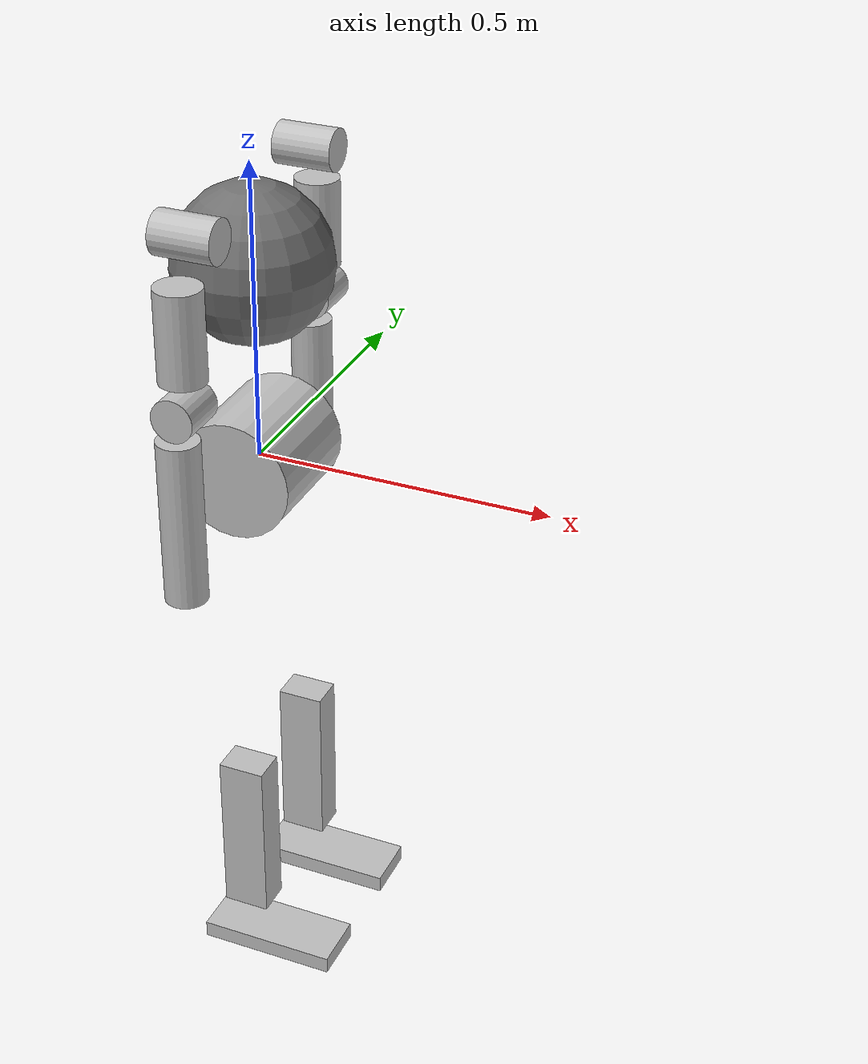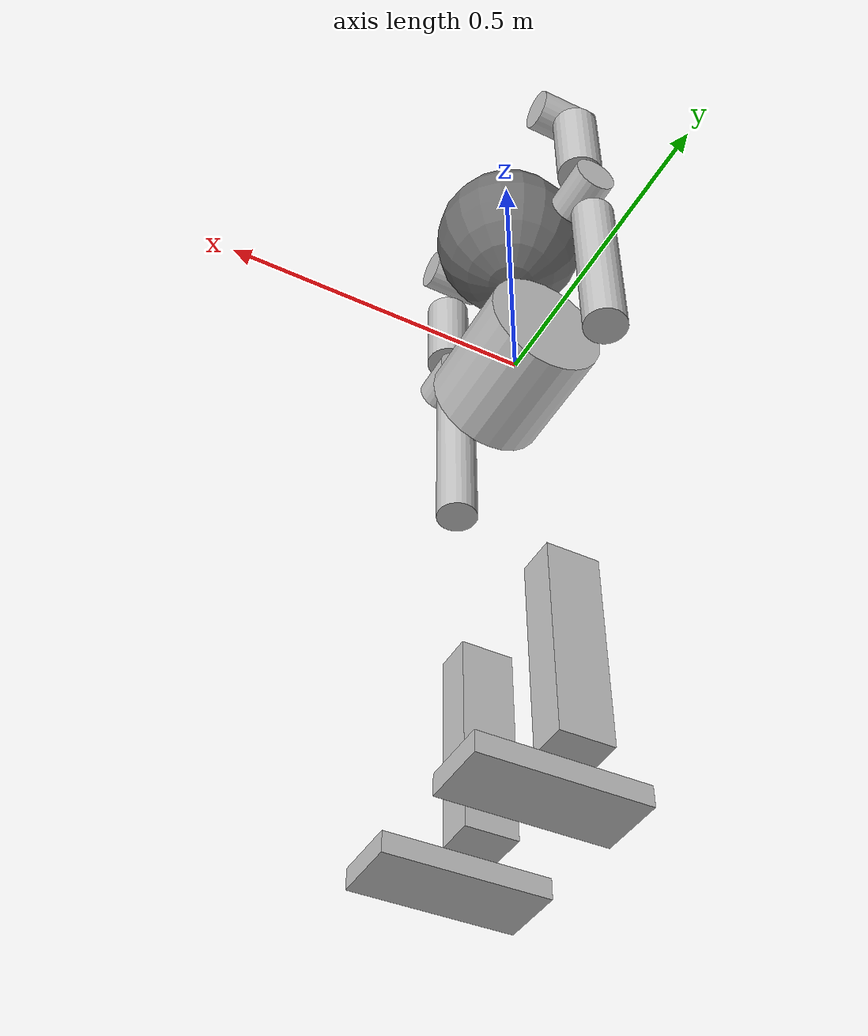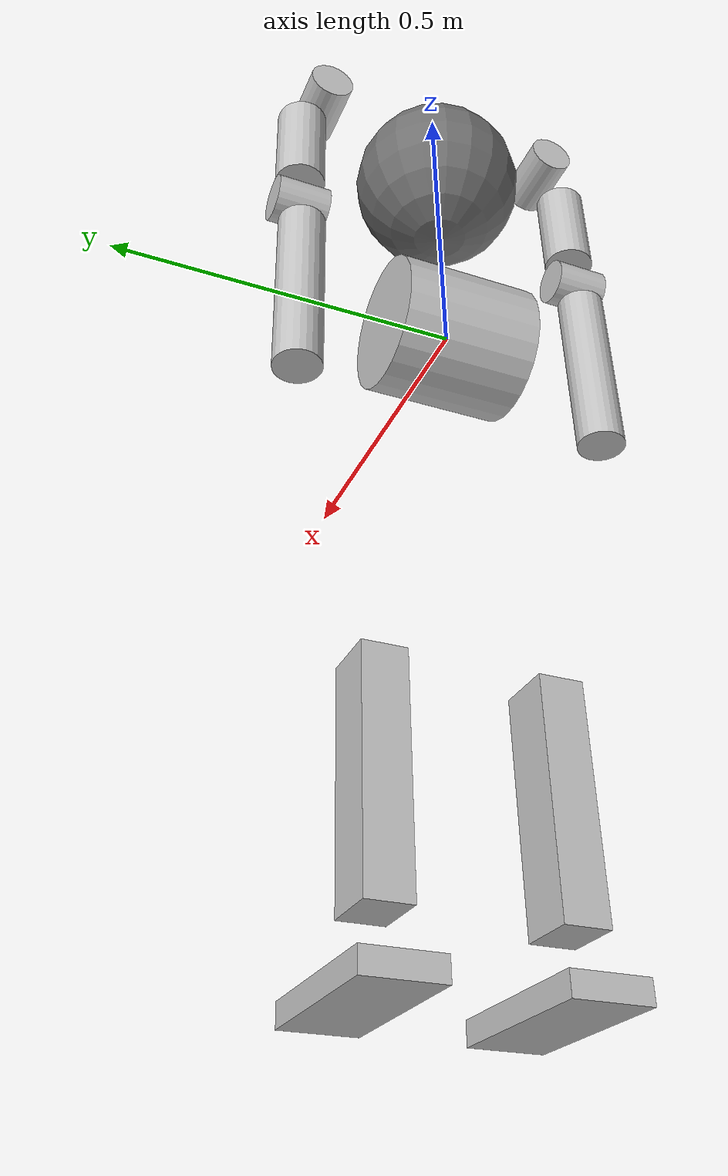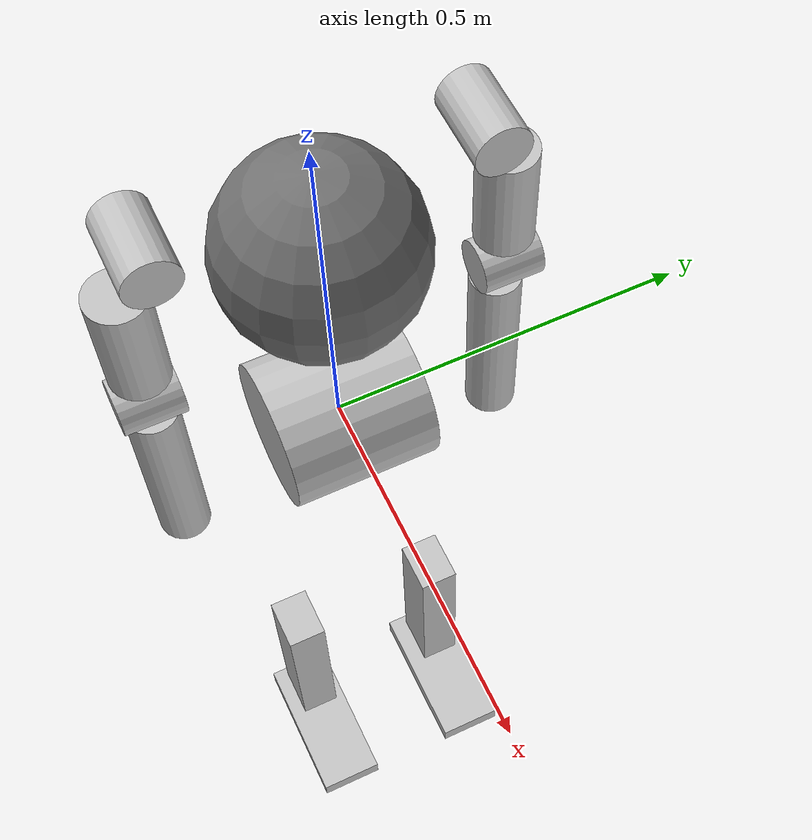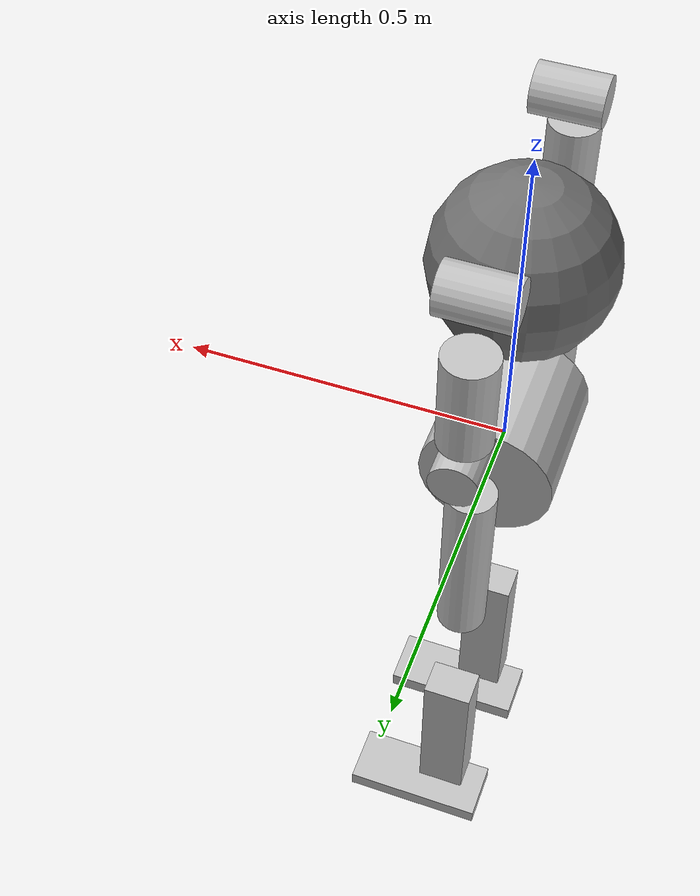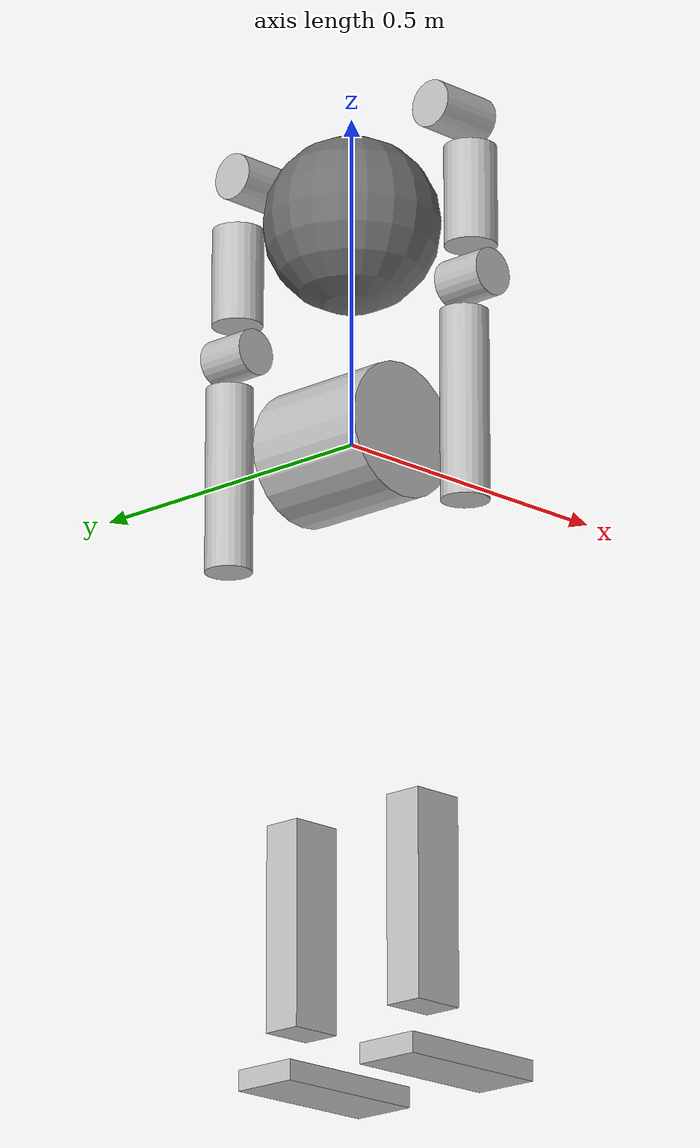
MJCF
<mujoco model="adam_lite">
    <compiler angle="radian" />
    <size njmax="500" nconmax="100" />
    <worldbody>
        <geom size="0.1 0.1" quat="0.707388 0.706825 0 0" type="cylinder" rgba="0.752941 0.752941 0.752941 1" />
        <body name="hipPitchLeft" pos="0 0.096102 -0.027011" quat="0.953716 -0.300708 0 0">
            <inertial pos="-0.06071 0.058995 -0.000274" quat="0.2259 0.413092 0.574187 0.669801" mass="2.12296" diaginertia="0.00480692 0.00469646 0.00272763" />
            <joint name="hipPitch_Left" pos="0 0 0" axis="0 1 0" limited="true" range="-2.09 2.09" />
            <body name="hipRollLeft" pos="-0.0255 0.069 0" quat="0.953716 0.300708 0 0">
                <inertial pos="0.039593 -0.000453 -0.010045" quat="-0.0502458 0.589823 -0.00127584 0.805967" mass="1.3024" diaginertia="0.00136322 0.00119316 0.00109763" />
                <joint name="hipRoll_Left" pos="0 0 0" axis="1 0 0" limited="true" range="-0.78 1.57" />
                <body name="thigh_Left" pos="0.044 0 -0.0525">
                    <inertial pos="0.003802 -0.00818 -0.130931" quat="0.685627 0.0478779 -0.0360642 0.725481" mass="6.09891" diaginertia="0.0578471 0.0518378 0.0115542" />
                    <joint name="hipYaw_Left" pos="0 0 0" axis="0 0 1" limited="true" range="-0.78 0.78" />
                    <body name="shin_Left" pos="0 -0.0355 -0.369">
                        <inertial pos="4e-06 0.000631 -0.145751" quat="0.638683 0.00462673 -0.0130091 0.769346" mass="2.24063" diaginertia="0.0235607 0.0234803 0.00132806" />
                        <joint name="kneePitch_Left" pos="0 0 0" axis="0 1 0" limited="true" range="-0.09 2.4" />
                        <geom size="0.04 0.03 0.15" pos="0 0 -0.2" type="box" rgba="0.752941 0.752941 0.752941 1" />
                        <body name="footLeftY" pos="0 0 -0.37">
                            <inertial pos="0 0 0" mass="0.052131" diaginertia="5e-06 5e-06 4e-06" />
                            <joint name="anklePitch_Left" pos="0 0 0" axis="0 1 0" limited="true" range="-1 0.35" />
                            <body name="toe_left" pos="0 0 0">
                                <inertial pos="0.052656 0.117093 -0.900329" quat="3.80354e-05 0.66776 -0.00707653 0.744343" mass="0.436113" diaginertia="0.0015569 0.00151313 0.000281965" />
                                <joint name="ankleRoll_Left" pos="0 0 0" axis="1 0 0" limited="true" range="-0.3491 0.3491" />
                                <geom size="0.12 0.05 0.015" pos="0.047 0 -0.05" type="box" rgba="0.752941 0.752941 0.752941 1" />
                            </body>
                        </body>
                    </body>
                </body>
            </body>
        </body>
        <body name="hipPitchRight" pos="0 -0.096102 -0.027011" quat="0.953716 0.300708 0 0">
            <inertial pos="-0.06071 -0.058995 -0.000274" quat="0.669801 0.574187 0.413092 0.2259" mass="2.12296" diaginertia="0.00480692 0.00469646 0.00272763" />
            <joint name="hipPitch_Right" pos="0 0 0" axis="0 1 0" limited="true" range="-2.09 2.09" />
            <body name="hipRollRight" pos="-0.0255 -0.069 0" quat="0.953716 -0.300708 0 0">
                <inertial pos="0.039593 0.000453 -0.010045" quat="0.0502458 0.589823 0.00127584 0.805967" mass="1.3024" diaginertia="0.00136322 0.00119316 0.00109763" />
                <joint name="hipRoll_Right" pos="0 0 0" axis="1 0 0" limited="true" range="-1.57 0.78" />
                <body name="thigh_Right" pos="0.044 0 -0.0525">
                    <inertial pos="0.003802 0.00818 -0.130931" quat="0.725481 -0.0360642 0.0478779 0.685627" mass="6.09891" diaginertia="0.0578471 0.0518378 0.0115542" />
                    <joint name="hipYaw_Right" pos="0 0 0" axis="0 0 1" limited="true" range="-0.78 0.78" />
                    <body name="shin_Right" pos="0 0.0355 -0.369">
                        <inertial pos="4e-06 -0.000631 -0.145751" quat="0.769346 -0.0130091 0.00462673 0.638683" mass="2.24063" diaginertia="0.0235607 0.0234803 0.00132806" />
                        <joint name="kneePitch_Right" pos="0 0 0" axis="0 1 0" limited="true" range="-0.09 2.4" />
                        <geom size="0.04 0.03 0.15" pos="0 0 -0.2" type="box" rgba="0.752941 0.752941 0.752941 1" />
                        <body name="footRightY" pos="0 0 -0.37">
                            <inertial pos="0 0 0" mass="0.052131" diaginertia="5e-06 5e-06 4e-06" />
                            <joint name="anklePitch_Right" pos="0 0 0" axis="0 1 0" limited="true" range="-1 0.35" />
                            <body name="toe_right" pos="0 0 0">
                                <inertial pos="0.052656 -0.117093 -0.900329" quat="-3.80354e-05 0.66776 0.00707653 0.744343" mass="0.436113" diaginertia="0.0015569 0.00151313 0.000281965" />
                                <joint name="ankleRoll_Right" pos="0 0 0" axis="1 0 0" limited="true" range="-0.3491 0.3491" />
                                <geom size="0.12 0.05 0.015" pos="0.047 0 -0.05" type="box" rgba="0.752941 0.752941 0.752941 1" />
                            </body>
                        </body>
                    </body>
                </body>
            </body>
        </body>
        <body name="waistRoll" pos="0 0 0.05023">
            <inertial pos="0.001521 0.001495 0.039984" quat="0.426082 0.0231673 -0.00875426 0.904345" mass="2.5" diaginertia="0.00676976 0.0067468 0.00246545" />
            <joint name="waistRoll" pos="0 0 0" axis="1 0 0" limited="true" range="-0.52 0.52" />
            <body name="waistPitch" pos="0 0 0.08">
                <inertial pos="0 -0.003646 0.029114" quat="0.521775 0.477233 -0.477233 0.521775" mass="0.654478" diaginertia="0.00121048 0.00117 0.000770515" />
                <joint name="waistPitch" pos="0 0 0" axis="0 1 0" limited="true" range="-0.78 0.78" />
                <body name="torso" pos="0 0 0.056115">
                    <inertial pos="0.00999897 -1.76399e-05 0.200507" quat="0.999216 0.00019187 -0.0395987 -3.12304e-05" mass="11.864" diaginertia="0.220659 0.186499 0.0835417" />
                    <joint name="waistYaw" pos="0 0 0" axis="0 0 1" limited="true" range="-0.78 0.78" />
                    <geom size="0.13" pos="0 0 0.15" rgba="0.439216 0.439216 0.439216 1" />
                    <body name="shoulderPitchLeft" pos="0 0.158234 0.253619" quat="0.984807 0.17365 0 0">
                        <inertial pos="-0.00147856 0.0312405 0.000194587" quat="-0.00224487 0.705241 0.0161677 0.708779" mass="0.222453" diaginertia="0.000380025 0.000328084 0.000174891" />
                        <joint name="shoulderPitch_Left" pos="0 0 0" axis="0 1 0" limited="true" range="-2.7 1" />
                        <body name="shoulderRollLeft" pos="0.0335 0.044 0" quat="0.984807 -0.17365 0 0">
                            <inertial pos="-0.030453 0.010582 -0.014137" quat="0.395304 -0.143325 0.291372 0.859241" mass="0.6" diaginertia="0.000764117 0.000738326 0.000336557" />
                            <joint name="shoulderRoll_Left" pos="0 0 0" axis="1 0 0" limited="true" range="-0.3 3.14" />
                            <geom size="0.035 0.05" pos="-0.03 0 0" quat="0.707105 0 0.707108 0" type="cylinder" rgba="0.752941 0.752941 0.752941 1" />
                            <body name="shoulderYawLeft" pos="-0.0335 0.034081 -0.059">
                                <inertial pos="-0.000951634 -0.00063648 -0.0979643" quat="0.999931 0.00767396 -0.00893722 0.000336496" mass="0.853574" diaginertia="0.00470232 0.00453394 0.000559741" />
                                <joint name="shoulderYaw_Left" pos="0 0 0" axis="0 0 1" limited="true" range="-1.6 1.6" />
                                <geom size="0.038 0.075" pos="0 0 -0.08" type="cylinder" rgba="0.752941 0.752941 0.752941 1" />
                                <body name="elbowLeft" pos="0 -0.0285 -0.20365">
                                    <inertial pos="-0.00754242 0.0277403 -0.0779356" quat="0.703856 0.0140127 0.00981989 0.710137" mass="0.876361" diaginertia="0.0109277 0.0108858 0.000382195" />
                                    <joint name="elbow_Left" pos="0 0 0" axis="0 1 0" limited="true" range="-2 0" />
                                    <geom size="0.035 0.04" pos="0 0.03 0" quat="0.707105 0.707108 0 0" type="cylinder" rgba="0.752941 0.752941 0.752941 1" />
                                    <geom size="0.035 0.14" pos="-0.015 0.0285 -0.1934" type="cylinder" rgba="0.752941 0.752941 0.752941 1" />
                                </body>
                            </body>
                        </body>
                    </body>
                    <body name="shoulderPitchRight" pos="0 -0.158234 0.253619" quat="0.984807 -0.17365 0 0">
                        <inertial pos="-0.00147856 -0.0312405 0.000194587" quat="0.00224487 0.705241 -0.0161677 0.708779" mass="0.222453" diaginertia="0.000380025 0.000328084 0.000174891" />
                        <joint name="shoulderPitch_Right" pos="0 0 0" axis="0 1 0" limited="true" range="-2.7 1.1" />
                        <body name="shoulderRollRight" pos="0.0335 -0.044 0" quat="0.984807 0.17365 0 0">
                            <inertial pos="-0.030453 -0.010582 -0.014137" quat="0.859241 0.291372 -0.143325 0.395304" mass="0.6" diaginertia="0.000764117 0.000738326 0.000336557" />
                            <joint name="shoulderRoll_Right" pos="0 0 0" axis="1 0 0" limited="true" range="-3.14 0.3" />
                            <geom size="0.035 0.05" pos="-0.03 0 0" quat="0.707105 0 0.707108 0" type="cylinder" rgba="0.752941 0.752941 0.752941 1" />
                            <body name="shoulderYawRight" pos="-0.0335 -0.034081 -0.059">
                                <inertial pos="-0.000951634 0.00063648 -0.0979643" quat="0.999931 -0.00767396 -0.00893722 -0.000336496" mass="0.853574" diaginertia="0.00470232 0.00453394 0.000559741" />
                                <joint name="shoulderYaw_Right" pos="0 0 0" axis="0 0 1" limited="true" range="-1.6 1.6" />
                                <geom size="0.038 0.075" pos="0 0 -0.08" type="cylinder" rgba="0.752941 0.752941 0.752941 1" />
                                <body name="elbowRight" pos="0 0.0285 -0.20365">
                                    <inertial pos="-0.00754242 -0.0277403 -0.0779356" quat="0.710137 0.00981989 0.0140127 0.703856" mass="0.876361" diaginertia="0.0109277 0.0108858 0.000382195" />
                                    <joint name="elbow_Right" pos="0 0 0" axis="0 1 0" limited="true" range="-2 0" />
                                    <geom size="0.035 0.04" pos="0 -0.03 0" quat="0.707105 0.707108 0 0" type="cylinder" rgba="0.752941 0.752941 0.752941 1" />
                                    <geom size="0.035 0.14" pos="-0.015 -0.0285 -0.1934" type="cylinder" rgba="0.752941 0.752941 0.752941 1" />
                                </body>
                            </body>
                        </body>
                    </body>
                </body>
            </body>
        </body>
    </worldbody>
</mujoco>
